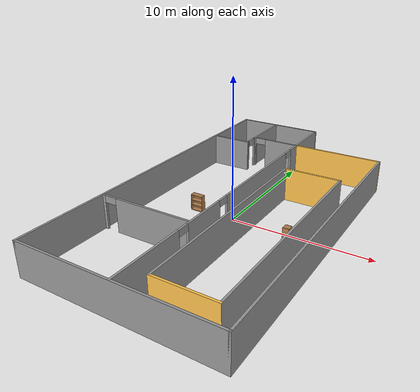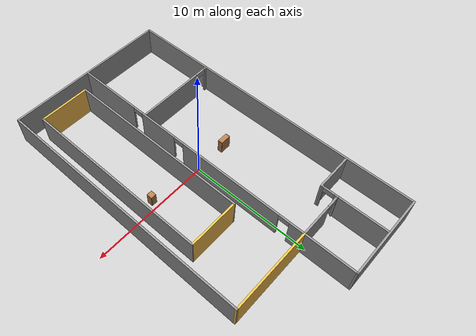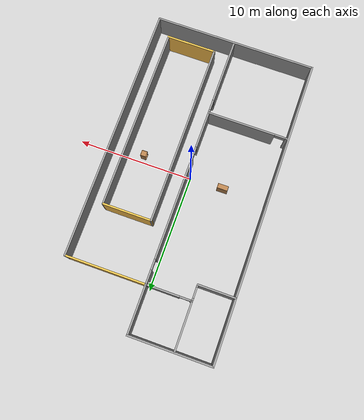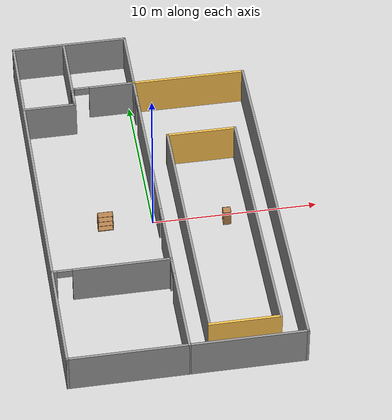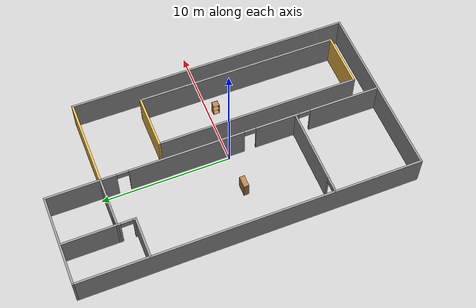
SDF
<sdf version="1.7">
 <world name="default">
  <light name="sun" type="directional">
   <pose>0 0 10 0 -0 0</pose>
   <diffuse>0.8 0.8 0.8 1</diffuse>
   <specular>0.2 0.2 0.2 1</specular>
   <attenuation>
    <range>1000</range>
    <constant>0.9</constant>
    <linear>0.01</linear>
    <quadratic>0.001</quadratic>
   </attenuation>
   <direction>-0.5 0.1 -0.9</direction>
   <spot><inner_angle>0</inner_angle><outer_angle>0</outer_angle><falloff>0</falloff></spot>
  </light>
  <gravity>0 0 -9.8</gravity>
  <magnetic_field>6e-06 2.3e-05 -4.2e-05</magnetic_field>
  <atmosphere type="adiabatic"/>
  <physics type="ode">
   <max_step_size>0.001</max_step_size>
   <real_time_factor>1</real_time_factor>
   <real_time_update_rate>1000</real_time_update_rate>
  </physics>
  <scene><ambient>0.4 0.4 0.4 1</ambient><background>0.7 0.7 0.7 1</background><shadows>1</shadows></scene>
  <audio><device>default</device></audio>
  <spherical_coordinates>
   <surface_model>EARTH_WGS84</surface_model>
   <latitude_deg>0</latitude_deg>
   <longitude_deg>0</longitude_deg>
   <elevation>0</elevation>
   <heading_deg>0</heading_deg>
  </spherical_coordinates>
  <light name="sun" type="directional">
   <pose>-2.5293 0.256064 10 0 -0 0</pose>
   <diffuse>0.8 0.8 0.8 1</diffuse>
   <specular>0.2 0.2 0.2 1</specular>
   <attenuation>
    <range>1000</range>
    <constant>0.9</constant>
    <linear>0.01</linear>
    <quadratic>0.001</quadratic>
   </attenuation>
   <direction>-0.5 0.1 -0.9</direction>
  </light>
  <model name="1st_floor">
   <pose>0.206969 0.850804 0 0 -0 0</pose>
   <link name="Wall_149">
    <collision name="Wall_149_Collision">
     <geometry><box><size>26 0.15 2.5</size></box></geometry>
     <pose>0 0 1.25 0 -0 0</pose>
    </collision>
    <visual name="Wall_149_Visual">
     <pose>0 0 1.25 0 -0 0</pose>
     <geometry><box><size>26 0.15 2.5</size></box></geometry>
     <material>
      <script><uri>file://media/materials/scripts/gazebo.material</uri><name>Gazebo/Grey</name></script>
      <ambient>1 1 1 1</ambient>
     </material>
     <meta><layer>0</layer></meta>
    </visual>
    <pose>-6.925 -0.049999 0 0 -0 -1.5708</pose>
   </link>
   <link name="Wall_156">
    <collision name="Wall_156_Collision">
     <geometry><box><size>14 0.15 2.5</size></box></geometry>
     <pose>0 0 1.25 0 -0 0</pose>
    </collision>
    <visual name="Wall_156_Visual">
     <pose>0 0 1.25 0 -0 0</pose>
     <geometry><box><size>14 0.15 2.5</size></box></geometry>
     <material>
      <script><uri>file://media/materials/scripts/gazebo.material</uri><name>Gazebo/Grey</name></script>
      <ambient>1 1 1 1</ambient>
     </material>
     <meta><layer>0</layer></meta>
    </visual>
    <pose>0 -12.975 0 0 -0 0</pose>
   </link>
   <link name="Wall_158">
    <collision name="Wall_158_Collision">
     <geometry><box><size>22 0.15 2.5</size></box></geometry>
     <pose>0 0 1.25 0 -0 0</pose>
    </collision>
    <visual name="Wall_158_Visual">
     <pose>0 0 1.25 0 -0 0</pose>
     <geometry><box><size>22 0.15 2.5</size></box></geometry>
     <material>
      <script><uri>file://media/materials/scripts/gazebo.material</uri><name>Gazebo/Grey</name></script>
      <ambient>1 1 1 1</ambient>
     </material>
     <meta><layer>0</layer></meta>
    </visual>
    <pose>6.925 -2.05 0 0 -0 1.5708</pose>
   </link>
   <link name="Wall_160">
    <collision name="Wall_160_Collision">
     <geometry><box><size>7 0.15 2.5</size></box></geometry>
     <pose>0 0 1.25 0 -0 0</pose>
    </collision>
    <visual name="Wall_160_Visual">
     <pose>0 0 1.25 0 -0 0</pose>
     <geometry><box><size>7 0.15 2.5</size></box></geometry>
     <material>
      <script><uri>file://media/materials/scripts/gazebo.material</uri><name>Gazebo/Grey</name></script>
      <ambient>1 0.764706 0.305882 1</ambient>
     </material>
     <meta><layer>0</layer></meta>
    </visual>
    <pose>3.5 8.875 0 0 -0 3.14159</pose>
   </link>
   <link name="Wall_162">
    <collision name="Wall_162_Collision">
     <geometry><box><size>4.25 0.15 2.5</size></box></geometry>
     <pose>0 0 1.25 0 -0 0</pose>
    </collision>
    <visual name="Wall_162_Visual">
     <pose>0 0 1.25 0 -0 0</pose>
     <geometry><box><size>4.25 0.15 2.5</size></box></geometry>
     <material>
      <script><uri>file://media/materials/scripts/gazebo.material</uri><name>Gazebo/Grey</name></script>
      <ambient>1 1 1 1</ambient>
     </material>
     <meta><layer>0</layer></meta>
    </visual>
    <pose>0.075 10.925 0 0 -0 1.5708</pose>
   </link>
   <link name="Wall_163">
    <collision name="Wall_163_Collision">
     <geometry><box><size>7.15 0.15 2.5</size></box></geometry>
     <pose>0 0 1.25 0 -0 0</pose>
    </collision>
    <visual name="Wall_163_Visual">
     <pose>0 0 1.25 0 -0 0</pose>
     <geometry><box><size>7.15 0.15 2.5</size></box></geometry>
     <material>
      <script><uri>file://media/materials/scripts/gazebo.material</uri><name>Gazebo/Grey</name></script>
      <ambient>1 1 1 1</ambient>
     </material>
     <meta><layer>0</layer></meta>
    </visual>
    <pose>-3.425 12.975 0 0 -0 3.14159</pose>
   </link>
   <link name="Wall_165">
    <pose>0.075 -2.05 0 0 -0 -1.5708</pose>
    <visual name="Wall_165_Visual_0">
     <pose>-10.364 0 1.25 0 -0 0</pose>
     <geometry><box><size>1.27193 0.15 2.5</size></box></geometry>
     <material>
      <script><uri>file://media/materials/scripts/gazebo.material</uri><name>Gazebo/Grey</name></script>
      <ambient>1 1 1 1</ambient>
     </material>
     <meta><layer>0</layer></meta>
    </visual>
    <collision name="Wall_165_Collision_0">
     <geometry><box><size>1.27193 0.15 2.5</size></box></geometry>
     <pose>-10.364 0 1.25 0 -0 0</pose>
    </collision>
    <visual name="Wall_165_Visual_1">
     <pose>-4.37057 0 1.25 0 -0 0</pose>
     <geometry><box><size>8.91501 0.15 2.5</size></box></geometry>
     <material>
      <script><uri>file://media/materials/scripts/gazebo.material</uri><name>Gazebo/Grey</name></script>
      <ambient>1 1 1 1</ambient>
     </material>
     <meta><layer>0</layer></meta>
    </visual>
    <collision name="Wall_165_Collision_1">
     <geometry><box><size>8.91501 0.15 2.5</size></box></geometry>
     <pose>-4.37057 0 1.25 0 -0 0</pose>
    </collision>
    <visual name="Wall_165_Visual_2">
     <pose>2.71557 0 1.25 0 -0 0</pose>
     <geometry><box><size>3.45727 0.15 2.5</size></box></geometry>
     <material>
      <script><uri>file://media/materials/scripts/gazebo.material</uri><name>Gazebo/Grey</name></script>
      <ambient>1 1 1 1</ambient>
     </material>
     <meta><layer>0</layer></meta>
    </visual>
    <collision name="Wall_165_Collision_2">
     <geometry><box><size>3.45727 0.15 2.5</size></box></geometry>
     <pose>2.71557 0 1.25 0 -0 0</pose>
    </collision>
    <visual name="Wall_165_Visual_3">
     <pose>8.1721 0 1.25 0 -0 0</pose>
     <geometry><box><size>5.65579 0.15 2.5</size></box></geometry>
     <material>
      <script><uri>file://media/materials/scripts/gazebo.material</uri><name>Gazebo/Grey</name></script>
      <ambient>1 1 1 1</ambient>
     </material>
     <meta><layer>0</layer></meta>
    </visual>
    <collision name="Wall_165_Collision_3">
     <geometry><box><size>5.65579 0.15 2.5</size></box></geometry>
     <pose>8.1721 0 1.25 0 -0 0</pose>
    </collision>
    <visual name="Wall_165_Visual_4">
     <pose>-9.27807 0 2.25 0 -0 0</pose>
     <geometry><box><size>0.9 0.15 0.5</size></box></geometry>
     <material>
      <script><uri>file://media/materials/scripts/gazebo.material</uri><name>Gazebo/Grey</name></script>
      <ambient>1 1 1 1</ambient>
     </material>
     <meta><layer>0</layer></meta>
    </visual>
    <collision name="Wall_165_Collision_4">
     <geometry><box><size>0.9 0.15 0.5</size></box></geometry>
     <pose>-9.27807 0 2.25 0 -0 0</pose>
    </collision>
    <visual name="Wall_165_Visual_5">
     <pose>0.53694 0 2.25 0 -0 0</pose>
     <geometry><box><size>0.9 0.15 0.5</size></box></geometry>
     <material>
      <script><uri>file://media/materials/scripts/gazebo.material</uri><name>Gazebo/Grey</name></script>
      <ambient>1 1 1 1</ambient>
     </material>
     <meta><layer>0</layer></meta>
    </visual>
    <collision name="Wall_165_Collision_5">
     <geometry><box><size>0.9 0.15 0.5</size></box></geometry>
     <pose>0.53694 0 2.25 0 -0 0</pose>
    </collision>
    <visual name="Wall_165_Visual_6">
     <pose>4.89421 0 2.25 0 -0 0</pose>
     <geometry><box><size>0.9 0.15 0.5</size></box></geometry>
     <material>
      <script><uri>file://media/materials/scripts/gazebo.material</uri><name>Gazebo/Grey</name></script>
      <ambient>1 1 1 1</ambient>
     </material>
     <meta><layer>0</layer></meta>
    </visual>
    <collision name="Wall_165_Collision_6">
     <geometry><box><size>0.9 0.15 0.5</size></box></geometry>
     <pose>4.89421 0 2.25 0 -0 0</pose>
    </collision>
   </link>
   <link name="Wall_167">
    <pose>-1.85 8.875 0 0 -0 3.14159</pose>
    <visual name="Wall_167_Visual_0">
     <pose>-0.563372 0 1.25 0 -0 0</pose>
     <geometry><box><size>2.87326 0.15 2.5</size></box></geometry>
     <material>
      <script><uri>file://media/materials/scripts/gazebo.material</uri><name>Gazebo/Grey</name></script>
      <ambient>1 1 1 1</ambient>
     </material>
     <meta><layer>0</layer></meta>
    </visual>
    <collision name="Wall_167_Collision_0">
     <geometry><box><size>2.87326 0.15 2.5</size></box></geometry>
     <pose>-0.563372 0 1.25 0 -0 0</pose>
    </collision>
    <visual name="Wall_167_Visual_1">
     <pose>1.88663 0 1.25 0 -0 0</pose>
     <geometry><box><size>0.226744 0.15 2.5</size></box></geometry>
     <material>
      <script><uri>file://media/materials/scripts/gazebo.material</uri><name>Gazebo/Grey</name></script>
      <ambient>1 1 1 1</ambient>
     </material>
     <meta><layer>0</layer></meta>
    </visual>
    <collision name="Wall_167_Collision_1">
     <geometry><box><size>0.226744 0.15 2.5</size></box></geometry>
     <pose>1.88663 0 1.25 0 -0 0</pose>
    </collision>
    <visual name="Wall_167_Visual_2">
     <pose>1.32326 0 2.25 0 -0 0</pose>
     <geometry><box><size>0.9 0.15 0.5</size></box></geometry>
     <material>
      <script><uri>file://media/materials/scripts/gazebo.material</uri><name>Gazebo/Grey</name></script>
      <ambient>1 1 1 1</ambient>
     </material>
     <meta><layer>0</layer></meta>
    </visual>
    <collision name="Wall_167_Collision_2">
     <geometry><box><size>0.9 0.15 0.5</size></box></geometry>
     <pose>1.32326 0 2.25 0 -0 0</pose>
    </collision>
   </link>
   <link name="Wall_169">
    <collision name="Wall_169_Collision">
     <geometry><box><size>4.125 0.15 2.5</size></box></geometry>
     <pose>0 0 1.25 0 -0 0</pose>
    </collision>
    <visual name="Wall_169_Visual">
     <pose>0 0 1.25 0 -0 0</pose>
     <geometry><box><size>4.125 0.15 2.5</size></box></geometry>
     <material>
      <script><uri>file://media/materials/scripts/gazebo.material</uri><name>Gazebo/Grey</name></script>
      <ambient>1 1 1 1</ambient>
     </material>
     <meta><layer>0</layer></meta>
    </visual>
    <pose>-3.775 10.8625 0 0 -0 1.5708</pose>
   </link>
   <link name="Wall_171">
    <pose>-3.775 8.2 0 0 -0 -1.5708</pose>
    <visual name="Wall_171_Visual_0">
     <pose>-0.590407 0 1.25 0 -0 0</pose>
     <geometry><box><size>0.319186 0.15 2.5</size></box></geometry>
     <material>
      <script><uri>file://media/materials/scripts/gazebo.material</uri><name>Gazebo/Grey</name></script>
      <ambient>1 1 1 1</ambient>
     </material>
     <meta><layer>0</layer></meta>
    </visual>
    <collision name="Wall_171_Collision_0">
     <geometry><box><size>0.319186 0.15 2.5</size></box></geometry>
     <pose>-0.590407 0 1.25 0 -0 0</pose>
    </collision>
    <visual name="Wall_171_Visual_1">
     <pose>0.609593 0 1.25 0 -0 0</pose>
     <geometry><box><size>0.280814 0.15 2.5</size></box></geometry>
     <material>
      <script><uri>file://media/materials/scripts/gazebo.material</uri><name>Gazebo/Grey</name></script>
      <ambient>1 1 1 1</ambient>
     </material>
     <meta><layer>0</layer></meta>
    </visual>
    <collision name="Wall_171_Collision_1">
     <geometry><box><size>0.280814 0.15 2.5</size></box></geometry>
     <pose>0.609593 0 1.25 0 -0 0</pose>
    </collision>
    <visual name="Wall_171_Visual_2">
     <pose>0.019186 0 2.25 0 -0 0</pose>
     <geometry><box><size>0.9 0.15 0.5</size></box></geometry>
     <material>
      <script><uri>file://media/materials/scripts/gazebo.material</uri><name>Gazebo/Grey</name></script>
      <ambient>1 1 1 1</ambient>
     </material>
     <meta><layer>0</layer></meta>
    </visual>
    <collision name="Wall_171_Collision_2">
     <geometry><box><size>0.9 0.15 0.5</size></box></geometry>
     <pose>0.019186 0 2.25 0 -0 0</pose>
    </collision>
   </link>
   <link name="Wall_172">
    <collision name="Wall_172_Collision">
     <geometry><box><size>3.25 0.15 2.5</size></box></geometry>
     <pose>0 0 1.25 0 -0 0</pose>
    </collision>
    <visual name="Wall_172_Visual">
     <pose>0 0 1.25 0 -0 0</pose>
     <geometry><box><size>3.25 0.15 2.5</size></box></geometry>
     <material>
      <script><uri>file://media/materials/scripts/gazebo.material</uri><name>Gazebo/Grey</name></script>
      <ambient>1 1 1 1</ambient>
     </material>
     <meta><layer>0</layer></meta>
    </visual>
    <pose>-5.325 7.525 0 0 -0 3.14159</pose>
   </link>
   <link name="Wall_175">
    <pose>-3.4182 -6.2136 0 0 -0 0</pose>
    <visual name="Wall_175_Visual_0">
     <pose>-3.39023 0 1.25 0 -0 0</pose>
     <geometry><box><size>0.344544 0.15 2.5</size></box></geometry>
     <material>
      <script><uri>file://media/materials/scripts/gazebo.material</uri><name>Gazebo/Grey</name></script>
      <ambient>1 1 1 1</ambient>
     </material>
     <meta><layer>0</layer></meta>
    </visual>
    <collision name="Wall_175_Collision_0">
     <geometry><box><size>0.344544 0.15 2.5</size></box></geometry>
     <pose>-3.39023 0 1.25 0 -0 0</pose>
    </collision>
    <visual name="Wall_175_Visual_1">
     <pose>0.622272 0 1.25 0 -0 0</pose>
     <geometry><box><size>5.88046 0.15 2.5</size></box></geometry>
     <material>
      <script><uri>file://media/materials/scripts/gazebo.material</uri><name>Gazebo/Grey</name></script>
      <ambient>1 1 1 1</ambient>
     </material>
     <meta><layer>0</layer></meta>
    </visual>
    <collision name="Wall_175_Collision_1">
     <geometry><box><size>5.88046 0.15 2.5</size></box></geometry>
     <pose>0.622272 0 1.25 0 -0 0</pose>
    </collision>
    <visual name="Wall_175_Visual_2">
     <pose>-2.76796 0 2.25 0 -0 0</pose>
     <geometry><box><size>0.9 0.15 0.5</size></box></geometry>
     <material>
      <script><uri>file://media/materials/scripts/gazebo.material</uri><name>Gazebo/Grey</name></script>
      <ambient>1 1 1 1</ambient>
     </material>
     <meta><layer>0</layer></meta>
    </visual>
    <collision name="Wall_175_Collision_2">
     <geometry><box><size>0.9 0.15 0.5</size></box></geometry>
     <pose>-2.76796 0 2.25 0 -0 0</pose>
    </collision>
   </link>
   <link name="Wall_181">
    <collision name="Wall_181_Collision">
     <geometry><box><size>15.75 0.15 2.5</size></box></geometry>
     <pose>0 0 1.25 0 -0 0</pose>
    </collision>
    <visual name="Wall_181_Visual">
     <pose>0 0 1.25 0 -0 0</pose>
     <geometry><box><size>15.75 0.15 2.5</size></box></geometry>
     <material>
      <script><uri>file://media/materials/scripts/gazebo.material</uri><name>Gazebo/Grey</name></script>
      <ambient>1 1 1 1</ambient>
     </material>
     <meta><layer>0</layer></meta>
    </visual>
    <pose>1.43899 -3.81868 0 0 -0 -1.5708</pose>
   </link>
   <link name="Wall_184">
    <collision name="Wall_184_Collision">
     <geometry><box><size>4.31083 0.15 2.5</size></box></geometry>
     <pose>0 0 1.25 0 -0 0</pose>
    </collision>
    <visual name="Wall_184_Visual">
     <pose>0 0 1.25 0 -0 0</pose>
     <geometry><box><size>4.31083 0.15 2.5</size></box></geometry>
     <material>
      <script><uri>file://media/materials/scripts/gazebo.material</uri><name>Gazebo/Grey</name></script>
      <ambient>1 0.764706 0.305882 1</ambient>
     </material>
     <meta><layer>0</layer></meta>
    </visual>
    <pose>3.51941 -11.6187 0 0 -0 0</pose>
   </link>
   <link name="Wall_189">
    <collision name="Wall_189_Collision">
     <geometry><box><size>4.25 0.15 2.5</size></box></geometry>
     <pose>0 0 1.25 0 -0 0</pose>
    </collision>
    <visual name="Wall_189_Visual">
     <pose>0 0 1.25 0 -0 0</pose>
     <geometry><box><size>4.25 0.15 2.5</size></box></geometry>
     <material>
      <script><uri>file://media/materials/scripts/gazebo.material</uri><name>Gazebo/Grey</name></script>
      <ambient>1 0.764706 0.305882 1</ambient>
     </material>
     <meta><layer>0</layer></meta>
    </visual>
    <pose>3.48899 3.98132 0 0 -0 0</pose>
   </link>
   <link name="Wall_195">
    <collision name="Wall_195_Collision">
     <geometry><box><size>15.75 0.15 2.5</size></box></geometry>
     <pose>0 0 1.25 0 -0 0</pose>
    </collision>
    <visual name="Wall_195_Visual">
     <pose>0 0 1.25 0 -0 0</pose>
     <geometry><box><size>15.75 0.15 2.5</size></box></geometry>
     <material>
      <script><uri>file://media/materials/scripts/gazebo.material</uri><name>Gazebo/Grey</name></script>
      <ambient>1 1 1 1</ambient>
     </material>
     <meta><layer>0</layer></meta>
    </visual>
    <pose>5.59982 -3.81868 0 0 -0 1.5708</pose>
   </link>
   <static>1</static>
  </model>
  <model name="bookshelf">
   <static>1</static>
   <link name="link">
    <inertial><mass>1</mass></inertial>
    <collision name="back">
     <pose>0 0.005 0.6 0 -0 0</pose>
     <geometry><box><size>0.9 0.01 1.2</size></box></geometry>
    </collision>
    <visual name="visual1">
     <pose>0 0.005 0.6 0 -0 0</pose>
     <geometry><box><size>0.9 0.01 1.2</size></box></geometry>
     <material>
      <script><uri>file://media/materials/scripts/gazebo.material</uri><name>Gazebo/Wood</name></script>
     </material>
    </visual>
    <collision name="left_side">
     <pose>0.45 -0.195 0.6 0 -0 0</pose>
     <geometry><box><size>0.02 0.4 1.2</size></box></geometry>
    </collision>
    <visual name="visual2">
     <pose>0.45 -0.195 0.6 0 -0 0</pose>
     <geometry><box><size>0.02 0.4 1.2</size></box></geometry>
     <material>
      <script><uri>file://media/materials/scripts/gazebo.material</uri><name>Gazebo/Wood</name></script>
     </material>
    </visual>
    <collision name="right_side">
     <pose>-0.45 -0.195 0.6 0 -0 0</pose>
     <geometry><box><size>0.02 0.4 1.2</size></box></geometry>
    </collision>
    <visual name="visual3">
     <pose>-0.45 -0.195 0.6 0 -0 0</pose>
     <geometry><box><size>0.02 0.4 1.2</size></box></geometry>
     <material>
      <script><uri>file://media/materials/scripts/gazebo.material</uri><name>Gazebo/Wood</name></script>
     </material>
    </visual>
    <collision name="bottom">
     <pose>0 -0.195 0.03 0 -0 0</pose>
     <geometry><box><size>0.88 0.4 0.06</size></box></geometry>
    </collision>
    <visual name="visual4">
     <pose>0 -0.195 0.03 0 -0 0</pose>
     <geometry><box><size>0.88 0.4 0.06</size></box></geometry>
     <material>
      <script><uri>file://media/materials/scripts/gazebo.material</uri><name>Gazebo/Wood</name></script>
     </material>
    </visual>
    <collision name="top">
     <pose>0 -0.195 1.19 0 -0 0</pose>
     <geometry><box><size>0.88 0.4 0.02</size></box></geometry>
    </collision>
    <visual name="visual5">
     <pose>0 -0.195 1.19 0 -0 0</pose>
     <geometry><box><size>0.88 0.4 0.02</size></box></geometry>
     <material>
      <script><uri>file://media/materials/scripts/gazebo.material</uri><name>Gazebo/Wood</name></script>
     </material>
    </visual>
    <collision name="low_shelf">
     <pose>0 -0.195 0.43 0 -0 0</pose>
     <geometry><box><size>0.88 0.4 0.02</size></box></geometry>
    </collision>
    <visual name="visual6">
     <pose>0 -0.195 0.43 0 -0 0</pose>
     <geometry><box><size>0.88 0.4 0.02</size></box></geometry>
     <material>
      <script><uri>file://media/materials/scripts/gazebo.material</uri><name>Gazebo/Wood</name></script>
     </material>
    </visual>
    <collision name="high_shelf">
     <pose>0 -0.195 0.8 0 -0 0</pose>
     <geometry><box><size>0.88 0.4 0.02</size></box></geometry>
    </collision>
    <visual name="visual7">
     <pose>0 -0.195 0.8 0 -0 0</pose>
     <geometry><box><size>0.88 0.4 0.02</size></box></geometry>
     <material>
      <script><uri>file://media/materials/scripts/gazebo.material</uri><name>Gazebo/Wood</name></script>
     </material>
    </visual>
   </link>
   <pose>-2.87896 0.187819 0 0 -0 0</pose>
  </model>
  <model name="cabinet">
   <static>1</static>
   <link name="cabinet_bottom_plate">
    <inertial>
     <pose>0 0 -1 0 -0 0</pose>
     <inertia><ixx>2.05</ixx><ixy>0</ixy><ixz>0</ixz><iyy>2.05</iyy><iyz>0</iyz><izz>2.05</izz></inertia>
     <mass>25</mass>
    </inertial>
    <collision name="cabinet_bottom_plate_geom">
     <pose>0 0 0.01 0 -0 0</pose>
     <geometry><box><size>0.45 0.45 0.02</size></box></geometry>
    </collision>
    <visual name="cabinet_bottom_plate_geom_visual">
     <pose>0 0 0.01 0 -0 0</pose>
     <geometry><box><size>0.45 0.45 0.02</size></box></geometry>
     <material>
      <script><uri>file://media/materials/scripts/gazebo.material</uri><name>Gazebo/Wood</name></script>
     </material>
    </visual>
    <collision name="cabinet_bottom_plate_geom_cabinet_back_plate">
     <pose>0.235 0 0.51 0 -0 0</pose>
     <geometry><box><size>0.02 0.45 1.02</size></box></geometry>
    </collision>
    <visual name="cabinet_bottom_plate_geom_cabinet_back_plate_visual">
     <pose>0.235 0 0.51 0 -0 0</pose>
     <geometry><box><size>0.02 0.45 1.02</size></box></geometry>
     <material>
      <script><uri>file://media/materials/scripts/gazebo.material</uri><name>Gazebo/Wood</name></script>
     </material>
    </visual>
    <collision name="cabinet_bottom_plate_geom_cabinet_left_plate">
     <pose>0 0.235 0.51 0 -0 0</pose>
     <geometry><box><size>0.45 0.02 1.02</size></box></geometry>
    </collision>
    <visual name="cabinet_bottom_plate_geom_cabinet_left_plate_visual">
     <pose>0 0.235 0.51 0 -0 0</pose>
     <geometry><box><size>0.45 0.02 1.02</size></box></geometry>
     <material>
      <script><uri>file://media/materials/scripts/gazebo.material</uri><name>Gazebo/Wood</name></script>
     </material>
    </visual>
    <collision name="cabinet_bottom_plate_geom_cabinet_middle_plate">
     <pose>0 0 0.51 0 -0 0</pose>
     <geometry><box><size>0.45 0.45 0.02</size></box></geometry>
    </collision>
    <visual name="cabinet_bottom_plate_geom_cabinet_middle_plate_visual">
     <pose>0 0 0.51 0 -0 0</pose>
     <geometry><box><size>0.45 0.45 0.02</size></box></geometry>
     <material>
      <script><uri>file://media/materials/scripts/gazebo.material</uri><name>Gazebo/Wood</name></script>
     </material>
    </visual>
    <collision name="cabinet_bottom_plate_geom_cabinet_right_plate">
     <pose>0 -0.235 0.51 0 -0 0</pose>
     <geometry><box><size>0.45 0.02 1.02</size></box></geometry>
    </collision>
    <visual name="cabinet_bottom_plate_geom_cabinet_right_plate_visual">
     <pose>0 -0.235 0.51 0 -0 0</pose>
     <geometry><box><size>0.45 0.02 1.02</size></box></geometry>
     <material>
      <script><uri>file://media/materials/scripts/gazebo.material</uri><name>Gazebo/Wood</name></script>
     </material>
    </visual>
    <collision name="cabinet_bottom_plate_geom_cabinet_top_plate">
     <pose>0 0 1.01 0 -0 0</pose>
     <geometry><box><size>0.45 0.45 0.02</size></box></geometry>
    </collision>
    <visual name="cabinet_bottom_plate_geom_cabinet_top_plate_visual">
     <pose>0 0 1.01 0 -0 0</pose>
     <geometry><box><size>0.45 0.45 0.02</size></box></geometry>
     <material>
      <script><uri>file://media/materials/scripts/gazebo.material</uri><name>Gazebo/Wood</name></script>
     </material>
    </visual>
   </link>
   <pose>4.39372 -0.576717 0 0 -0 0</pose>
  </model>
 </world>
</sdf>
